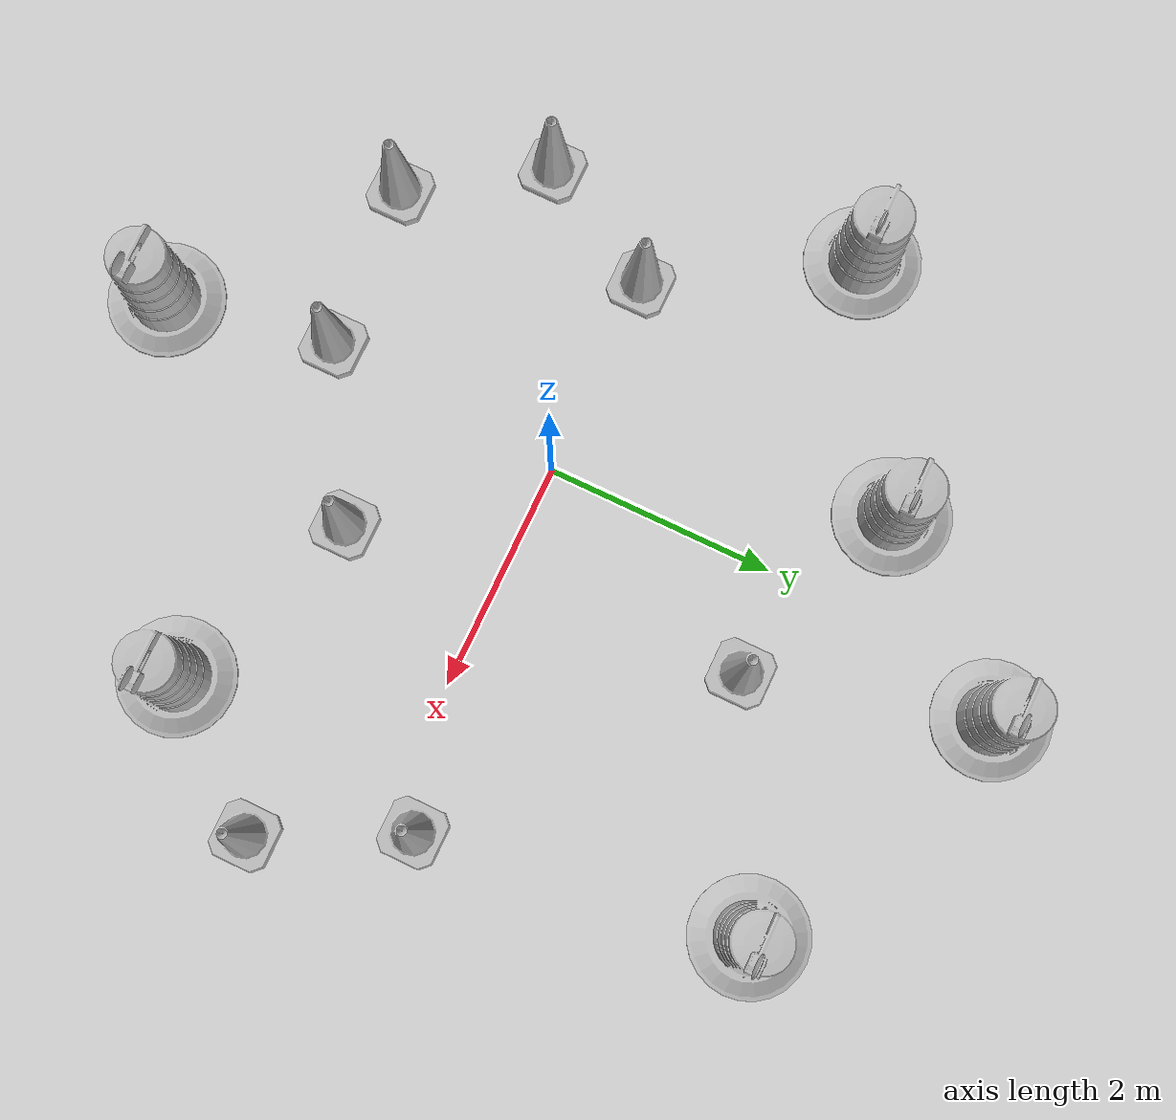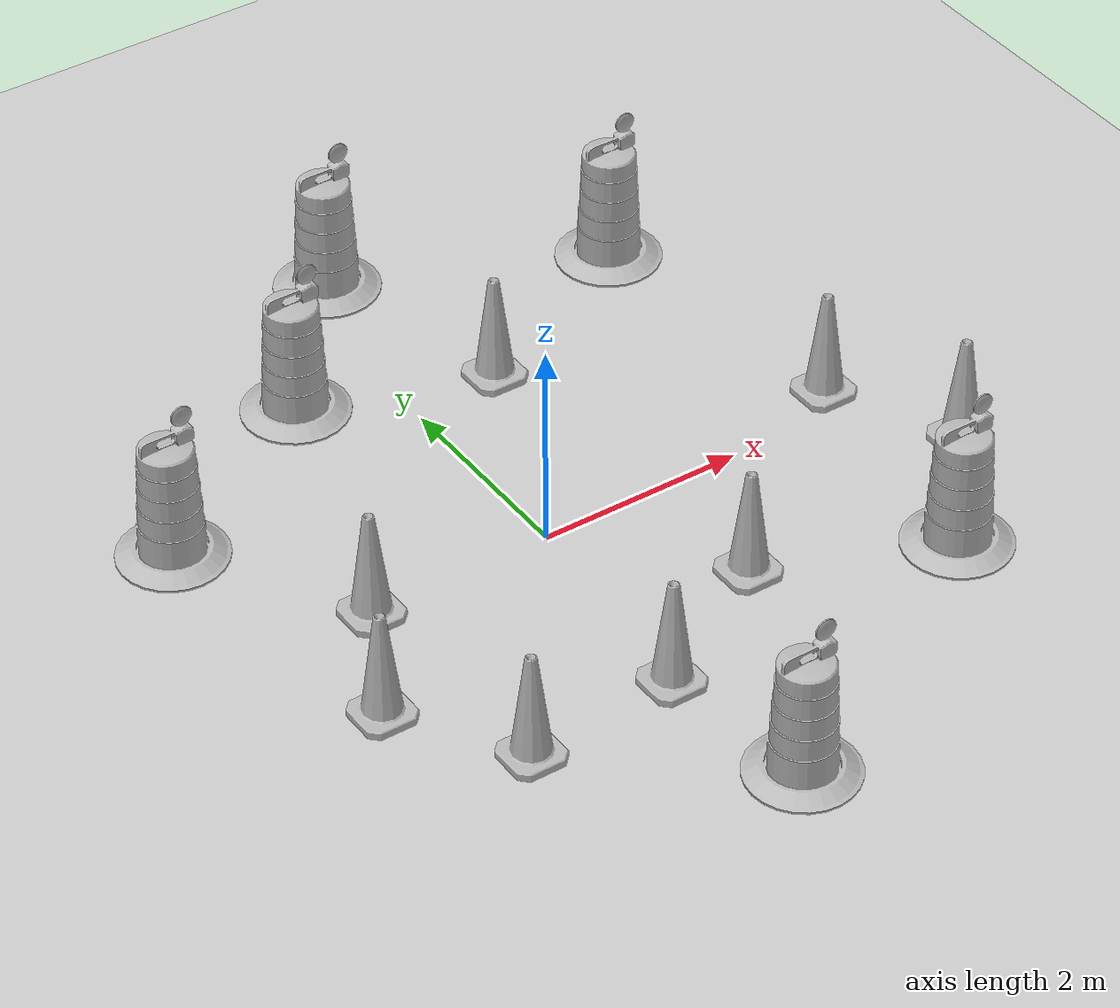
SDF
<sdf version="1.7">
 <world name="default">
  <light name="sun" type="directional">
   <pose>0 0 10 0 -0 0</pose>
   <diffuse>0.8 0.8 0.8 1</diffuse>
   <specular>0.2 0.2 0.2 1</specular>
   <attenuation>
    <range>1000</range>
    <constant>0.9</constant>
    <linear>0.01</linear>
    <quadratic>0.001</quadratic>
   </attenuation>
   <direction>-0.5 0.1 -0.9</direction>
   <spot><inner_angle>0</inner_angle><outer_angle>0</outer_angle><falloff>0</falloff></spot>
  </light>
  <model name="ground_plane">
   <static>1</static>
   <link name="link">
    <collision name="collision">
     <geometry><plane><normal>0 0 1</normal><size>100 100</size></plane></geometry>
     <surface><friction><ode><mu>100</mu><mu2>50</mu2></ode></friction></surface>
    </collision>
    <visual name="visual">
     <cast_shadows>0</cast_shadows>
     <geometry><plane><normal>0 0 1</normal><size>100 100</size></plane></geometry>
     <material>
      <script><uri>file://media/materials/scripts/gazebo.material</uri><name>Gazebo/Grey</name></script>
     </material>
    </visual>
   </link>
  </model>
  <gravity>0 0 -9.8</gravity>
  <magnetic_field>6e-06 2.3e-05 -4.2e-05</magnetic_field>
  <atmosphere type="adiabatic"/>
  <physics type="ode">
   <max_step_size>0.001</max_step_size>
   <real_time_factor>1</real_time_factor>
   <real_time_update_rate>1000</real_time_update_rate>
  </physics>
  <scene><ambient>0.4 0.4 0.4 1</ambient><background>0.7 0.7 0.7 1</background><shadows>1</shadows></scene>
  <audio><device>default</device></audio>
  <spherical_coordinates>
   <surface_model>EARTH_WGS84</surface_model>
   <latitude_deg>0</latitude_deg>
   <longitude_deg>0</longitude_deg>
   <elevation>0</elevation>
   <heading_deg>0</heading_deg>
  </spherical_coordinates>
  <model name="Construction Cone">
   <link name="link">
    <collision name="collision">
     <geometry>
      <mesh><scale>10 10 10</scale><uri>model://construction_cone/meshes/construction_cone.dae</uri></mesh>
     </geometry>
    </collision>
    <visual name="visual">
     <geometry>
      <mesh><scale>10 10 10</scale><uri>model://construction_cone/meshes/construction_cone.dae</uri></mesh>
     </geometry>
    </visual>
    <inertial>
     <inertia><ixx>1</ixx><ixy>0</ixy><ixz>0</ixz><iyy>1</iyy><iyz>0</iyz><izz>1</izz></inertia>
     <mass>1</mass>
    </inertial>
   </link>
   <pose>-1.79647 -0.006213 -0 0 -1e-06 0</pose>
  </model>
  <model name="Construction Cone_0_clone">
   <link name="link">
    <collision name="collision">
     <geometry>
      <mesh><scale>10 10 10</scale><uri>model://construction_cone/meshes/construction_cone.dae</uri></mesh>
     </geometry>
    </collision>
    <visual name="visual">
     <geometry>
      <mesh><scale>10 10 10</scale><uri>model://construction_cone/meshes/construction_cone.dae</uri></mesh>
     </geometry>
    </visual>
    <inertial>
     <inertia><ixx>1</ixx><ixy>0</ixy><ixz>0</ixz><iyy>1</iyy><iyz>0</iyz><izz>1</izz></inertia>
     <mass>1</mass>
    </inertial>
   </link>
   <pose>-1.66177 -2.23337 -0 0 -1e-06 0</pose>
  </model>
  <model name="Construction Cone_0_clone_0">
   <link name="link">
    <collision name="collision">
     <geometry>
      <mesh><scale>10 10 10</scale><uri>model://construction_cone/meshes/construction_cone.dae</uri></mesh>
     </geometry>
    </collision>
    <visual name="visual">
     <geometry>
      <mesh><scale>10 10 10</scale><uri>model://construction_cone/meshes/construction_cone.dae</uri></mesh>
     </geometry>
    </visual>
    <inertial>
     <inertia><ixx>1</ixx><ixy>0</ixy><ixz>0</ixz><iyy>1</iyy><iyz>0</iyz><izz>1</izz></inertia>
     <mass>1</mass>
    </inertial>
   </link>
   <pose>-0.196493 -2.14749 -0 0 -1e-06 0</pose>
  </model>
  <model name="Construction Cone_0_clone_1">
   <link name="link">
    <collision name="collision">
     <geometry>
      <mesh><scale>10 10 10</scale><uri>model://construction_cone/meshes/construction_cone.dae</uri></mesh>
     </geometry>
    </collision>
    <visual name="visual">
     <geometry>
      <mesh><scale>10 10 10</scale><uri>model://construction_cone/meshes/construction_cone.dae</uri></mesh>
     </geometry>
    </visual>
    <inertial>
     <inertia><ixx>1</ixx><ixy>0</ixy><ixz>0</ixz><iyy>1</iyy><iyz>0</iyz><izz>1</izz></inertia>
     <mass>1</mass>
    </inertial>
   </link>
   <pose>1.16875 -1.36171 -1e-05 -1e-06 0 0</pose>
  </model>
  <model name="Construction Cone_0_clone_2">
   <link name="link">
    <collision name="collision">
     <geometry>
      <mesh><scale>10 10 10</scale><uri>model://construction_cone/meshes/construction_cone.dae</uri></mesh>
     </geometry>
    </collision>
    <visual name="visual">
     <geometry>
      <mesh><scale>10 10 10</scale><uri>model://construction_cone/meshes/construction_cone.dae</uri></mesh>
     </geometry>
    </visual>
    <inertial>
     <inertia><ixx>1</ixx><ixy>0</ixy><ixz>0</ixz><iyy>1</iyy><iyz>0</iyz><izz>1</izz></inertia>
     <mass>1</mass>
    </inertial>
   </link>
   <pose>3.21202 0.278565 -0 0 -1e-06 0</pose>
  </model>
  <model name="Construction Cone_0_clone_3">
   <link name="link">
    <collision name="collision">
     <geometry>
      <mesh><scale>10 10 10</scale><uri>model://construction_cone/meshes/construction_cone.dae</uri></mesh>
     </geometry>
    </collision>
    <visual name="visual">
     <geometry>
      <mesh><scale>10 10 10</scale><uri>model://construction_cone/meshes/construction_cone.dae</uri></mesh>
     </geometry>
    </visual>
    <inertial>
     <inertia><ixx>1</ixx><ixy>0</ixy><ixz>0</ixz><iyy>1</iyy><iyz>0</iyz><izz>1</izz></inertia>
     <mass>1</mass>
    </inertial>
   </link>
   <pose>0.886901 2.15053 -0 -0 -0 -0</pose>
  </model>
  <model name="Construction Barrel">
   <link name="link">
    <inertial>
     <pose>0 0 0.4 0 -0 0</pose>
     <mass>500</mass>
     <inertia><ixx>51.2096</ixx><iyy>51.2096</iyy><izz>25</izz><ixy>0</ixy><ixz>0</ixz><iyz>0</iyz></inertia>
    </inertial>
    <collision name="collision">
     <geometry><mesh><uri>model://construction_barrel/meshes/construction_barrel.dae</uri></mesh></geometry>
    </collision>
    <visual name="visual">
     <geometry><mesh><uri>model://construction_barrel/meshes/construction_barrel.dae</uri></mesh></geometry>
    </visual>
   </link>
   <pose>-0.862499 2.7485 0 0 0 -1.9e-05</pose>
  </model>
  <model name="Construction Barrel_clone">
   <link name="link">
    <inertial>
     <pose>0 0 0.4 0 -0 0</pose>
     <mass>500</mass>
     <inertia><ixx>51.2096</ixx><iyy>51.2096</iyy><izz>25</izz><ixy>0</ixy><ixz>0</ixz><iyz>0</iyz></inertia>
    </inertial>
    <collision name="collision">
     <geometry><mesh><uri>model://construction_barrel/meshes/construction_barrel.dae</uri></mesh></geometry>
    </collision>
    <visual name="visual">
     <geometry><mesh><uri>model://construction_barrel/meshes/construction_barrel.dae</uri></mesh></geometry>
    </visual>
   </link>
   <pose>2.80042 3.09576 0 1e-06 1e-06 -2e-05</pose>
  </model>
  <model name="Construction Barrel_clone_0">
   <link name="link">
    <inertial>
     <pose>0 0 0.4 0 -0 0</pose>
     <mass>500</mass>
     <inertia><ixx>51.2096</ixx><iyy>51.2096</iyy><izz>25</izz><ixy>0</ixy><ixz>0</ixz><iyz>0</iyz></inertia>
    </inertial>
    <collision name="collision">
     <geometry><mesh><uri>model://construction_barrel/meshes/construction_barrel.dae</uri></mesh></geometry>
    </collision>
    <visual name="visual">
     <geometry><mesh><uri>model://construction_barrel/meshes/construction_barrel.dae</uri></mesh></geometry>
    </visual>
   </link>
   <pose>0.059641 -3.61742 0 0 0 -1.9e-05</pose>
  </model>
  <model name="Construction Barrel_clone_1">
   <link name="link">
    <inertial>
     <pose>0 0 0.4 0 -0 0</pose>
     <mass>500</mass>
     <inertia><ixx>51.2096</ixx><iyy>51.2096</iyy><izz>25</izz><ixy>0</ixy><ixz>0</ixz><iyz>0</iyz></inertia>
    </inertial>
    <collision name="collision">
     <geometry><mesh><uri>model://construction_barrel/meshes/construction_barrel.dae</uri></mesh></geometry>
    </collision>
    <visual name="visual">
     <geometry><mesh><uri>model://construction_barrel/meshes/construction_barrel.dae</uri></mesh></geometry>
    </visual>
   </link>
   <pose>0.352375 4.17329 0 1e-06 1e-06 -2.7e-05</pose>
  </model>
  <model name="Construction Barrel_clone_2">
   <link name="link">
    <inertial>
     <pose>0 0 0.4 0 -0 0</pose>
     <mass>500</mass>
     <inertia><ixx>51.2096</ixx><iyy>51.2096</iyy><izz>25</izz><ixy>0</ixy><ixz>0</ixz><iyz>0</iyz></inertia>
    </inertial>
    <collision name="collision">
     <geometry><mesh><uri>model://construction_barrel/meshes/construction_barrel.dae</uri></mesh></geometry>
    </collision>
    <visual name="visual">
     <geometry><mesh><uri>model://construction_barrel/meshes/construction_barrel.dae</uri></mesh></geometry>
    </visual>
   </link>
   <pose>-2.78902 1.62813 -2e-06 -7e-06 -4e-06 -1.8e-05</pose>
  </model>
  <model name="Construction Barrel_clone_3">
   <link name="link">
    <inertial>
     <pose>0 0 0.4 0 -0 0</pose>
     <mass>500</mass>
     <inertia><ixx>51.2096</ixx><iyy>51.2096</iyy><izz>25</izz><ixy>0</ixy><ixz>0</ixz><iyz>0</iyz></inertia>
    </inertial>
    <collision name="collision">
     <geometry><mesh><uri>model://construction_barrel/meshes/construction_barrel.dae</uri></mesh></geometry>
    </collision>
    <visual name="visual">
     <geometry><mesh><uri>model://construction_barrel/meshes/construction_barrel.dae</uri></mesh></geometry>
    </visual>
   </link>
   <pose>2.90113 -2.05589 -1e-06 4e-06 -2e-06 -1.4e-05</pose>
  </model>
  <model name="Construction Cone_0_clone_clone">
   <link name="link">
    <collision name="collision">
     <geometry>
      <mesh><scale>10 10 10</scale><uri>model://construction_cone/meshes/construction_cone.dae</uri></mesh>
     </geometry>
    </collision>
    <visual name="visual">
     <geometry>
      <mesh><scale>10 10 10</scale><uri>model://construction_cone/meshes/construction_cone.dae</uri></mesh>
     </geometry>
    </visual>
    <inertial>
     <inertia><ixx>1</ixx><ixy>0</ixy><ixz>0</ixz><iyy>1</iyy><iyz>0</iyz><izz>1</izz></inertia>
     <mass>1</mass>
    </inertial>
   </link>
   <pose>3.81493 -0.944515 -0 0 -1e-06 0</pose>
  </model>
  <model name="Construction Cone_0_clone_clone_0">
   <link name="link">
    <collision name="collision">
     <geometry>
      <mesh><scale>10 10 10</scale><uri>model://construction_cone/meshes/construction_cone.dae</uri></mesh>
     </geometry>
    </collision>
    <visual name="visual">
     <geometry>
      <mesh><scale>10 10 10</scale><uri>model://construction_cone/meshes/construction_cone.dae</uri></mesh>
     </geometry>
    </visual>
    <inertial>
     <inertia><ixx>1</ixx><ixy>0</ixy><ixz>0</ixz><iyy>1</iyy><iyz>0</iyz><izz>1</izz></inertia>
     <mass>1</mass>
    </inertial>
   </link>
   <pose>-2.39937 -1.12876 -9e-06 -4e-06 0 0</pose>
  </model>
 </world>
</sdf>
